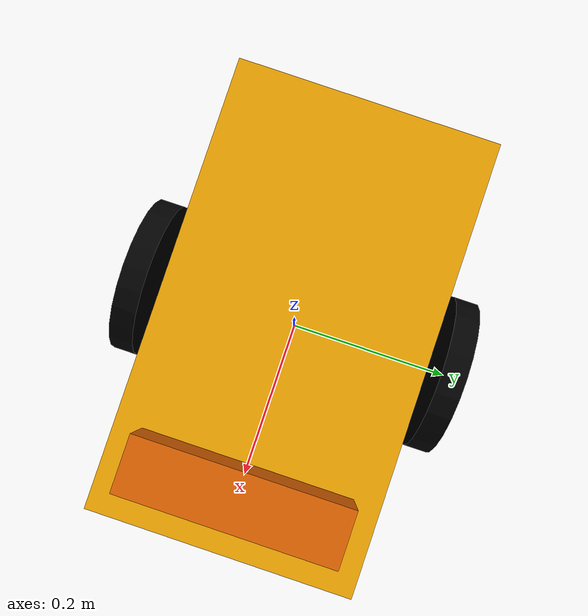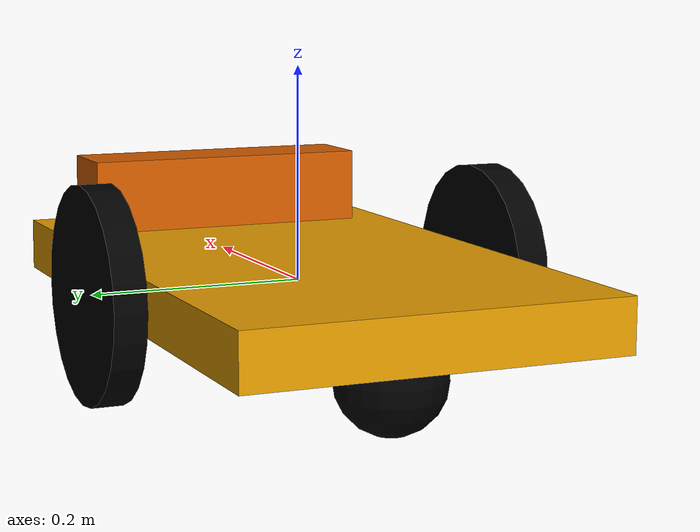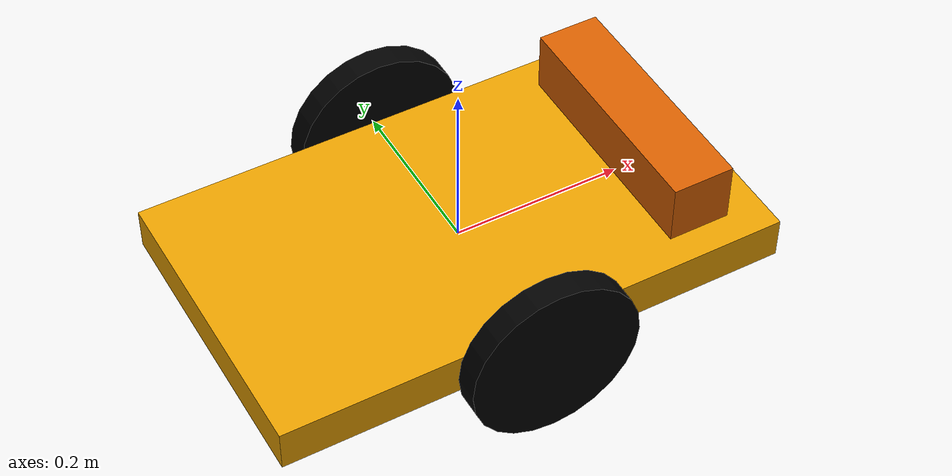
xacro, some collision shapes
<?xml version="1.0"?>

<robot name="robot_base" xmlns:xacro="http://www.ros.org/wiki/xacro">
    <!--______________________________ include ______________________________-->
    <xacro:include filename="$(find robot_navigation)/urdf/robot_essentials.urdf.xacro"/>
    <xacro:include filename="$(find robot_navigation)/urdf/robot_properties.urdf.xacro"/>
    <xacro:include filename="$(find robot_navigation)/urdf/gazebo_essentials.urdf.xacro"/>
    <xacro:include filename="$(find robot_navigation)/urdf/sensors/kinect_base.urdf.xacro"/>

    <!--_____________________________ robot base ____________________________-->
    <link name='base_link'>
        <pose>0.00 0.00 ${robot_base_zsize/2} 0.00 0.00</pose>
        <inertial>
            <mass value="${robot_base_mass}"/>
            <xacro:box_inertia mass="${robot_base_mass}" xlen="${robot_base_xsize}" ylen="${robot_base_ysize}" zlen="${robot_base_zsize}"/>
        </inertial>

        <collision name='collision'>
            <geometry>
                <box size="${robot_base_size}"/>
            </geometry>
        </collision>

        <visual name='chassis_visual'>
            <geometry>
                <box size="${robot_base_size}"/>
            </geometry>
        </visual>

        <xacro:robot_caster_wheel prefix="rear_caster"  origin="${rear_caster_origin}"/>
        <xacro:robot_caster_wheel prefix="front_caster" origin="${front_caster_origin}"/>
    </link>

    <!--____________________________ robot wheels ___________________________-->
    <xacro:robot_wheel prefix="left"/>
    <xacro:robot_wheel prefix="right"/>

    <!--____________________________ robot joints ___________________________-->
    <xacro:wheel_joint prefix="left"  origin="${left_wheel_origin}"/>
    <xacro:wheel_joint prefix="right" origin="${right_wheel_origin}"/>

    <!--___________________________ wheel friction __________________________-->
    <xacro:wheel_properties prefix="left"/>
    <xacro:wheel_properties prefix="right"/>

    <!--___________________________ attach kinect ___________________________-->
    <xacro:sensor_kinect parent="base_link"/>
</robot>

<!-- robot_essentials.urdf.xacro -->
<robot name="robot_essentials" xmlns:xacro="http://www.ros.org/wiki/xacro">
    <!--__________________________ cylinder inertia _________________________-->
    <xacro:macro name="cylinder_inertia" params="mass radius height">
        <inertia
            ixx="${mass * (3 * radius*radius + height*height)/12}" ixy = "0" ixz = "0"
            iyy="${mass * (3 * radius*radius + height*height)/12}" iyz = "0"
            izz="${mass * radius*radius/2}"/>
    </xacro:macro>

    <!--_____________________________ box inertia ___________________________-->
    <xacro:macro name="box_inertia" params="mass xlen ylen zlen">
        <inertia
            ixx="${mass * (ylen*ylen + zlen*zlen)/12}" ixy = "0" ixz = "0"
            iyy="${mass * (xlen*xlen + zlen*zlen)/12}" iyz = "0"
            izz="${mass * (xlen*xlen + zlen*zlen)/12}"/>
    </xacro:macro>

    <!--___________________________ sphere inertia __________________________-->
    <xacro:macro name="sphere_inertia" params="mass radius">
        <inertia
            ixx="${2 * mass * radius*radius/5}" ixy = "0" ixz = "0"
            iyy="${2 * mass * radius*radius/5}" iyz = "0"
            izz="${2 * mass * radius*radius/5}"/>
    </xacro:macro>

    <!--_________________________ caster wheel link _________________________-->
    <xacro:macro name="robot_caster_wheel" params="prefix origin">
        <collision name="${prefix}_caster_collision">
            <origin xyz="${origin}" rpy=" 0.00 0.00 0.00"/>
            <geometry>
                <sphere radius="${robot_caster_diameter/2}"/>
            </geometry>

            <surface>
                <friction>
                    <ode>
                        <mu>0</mu>
                        <mu2>0</mu2>
                        <slip1>1.0</slip1>
                        <slip2>1.0</slip2>
                    </ode>
                </friction>
            </surface>
        </collision>

        <visual name="${prefix}_caster_visual">
            <origin xyz="${origin}" rpy=" 0.00 0.00 0.00"/>
            <geometry>
                <sphere radius="${robot_caster_diameter/2}"/>
            </geometry>
            <material name="">
                <color rgba="0.0 0.0 0.0 1.0"/>
            </material>
        </visual>
    </xacro:macro>
    <!--_____________________________ wheel link ____________________________-->
    <xacro:macro name="robot_wheel" params="prefix">
        <link name="${prefix}_wheel">
            <inertial>
                <mass value="${robot_wheel_mass}"/>
                <xacro:cylinder_inertia mass="${robot_wheel_mass}" radius="${robot_wheel_diameter/2}" height="${robot_wheel_height}"/>
            </inertial>

            <visual>
                <origin xyz="0.00 0.00 0.00" rpy="${M_PI/2} 0.00 0.00"/>

                <geometry>
                    <cylinder radius="${robot_wheel_diameter/2}" length="${robot_wheel_height}"/>
                </geometry>

                <material name="">
                    <color rgba="0.0 0.0 0.0 1.0"/>
                </material>
            </visual>

            <collision>
                <origin xyz="0.00 0.00 0.00" rpy="${M_PI/2} 0.0 0.0"/>

                <geometry>
                    <cylinder radius="${robot_wheel_diameter/2}" length="${robot_wheel_height}"/>
                </geometry>
            </collision>
        </link>
    </xacro:macro>

    <!--_____________________________ wheel joint ___________________________-->
    <xacro:macro name="wheel_joint" params="prefix origin">
        <joint name="${prefix}_wheel_joint" type="continuous">
            <axis xyz="0 1 0"/>
            <parent link="base_link"/>
            <child link="${prefix}_wheel"/>
            <origin xyz="${origin}" rpy="0.00 0.00 0.00"/>
        </joint>
    </xacro:macro>
    <!--_________________________ wheel transmission ________________________-->

</robot>

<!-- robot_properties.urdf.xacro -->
<robot name="robot_properties" xmlns:xacro="http://www.ros.org/wiki/xacro">

    <!--___________________________ math constant ___________________________-->
    <xacro:property name="M_PI"                     value="3.14159265359"/>

    <!--________________________ robot base constants _______________________-->
    <xacro:property name="robot_base_mass"          value="15.0000"/>
    <xacro:property name="robot_base_xsize"         value="0.60000"/>
    <xacro:property name="robot_base_ysize"         value="0.35000"/>
    <xacro:property name="robot_base_zsize"         value="0.05000"/>
    <xacro:property name="robot_base_size"          value="${robot_base_xsize} ${robot_base_ysize} ${robot_base_zsize}"/>

    <!--_______________________ robot wheels constants ______________________-->
    <xacro:property name="robot_wheel_mass"         value="2.50000"/>
    <xacro:property name="robot_wheel_diameter"     value="0.20000"/>
    <xacro:property name="robot_wheel_height"       value="0.03000"/>
    <xacro:property name="robot_wheel_seperation"   value="${robot_base_ysize + robot_wheel_height +0.01}"/>
    <xacro:property name="left_wheel_origin"        value="0.00000  ${robot_wheel_seperation/2} -0.00010"/>
    <xacro:property name="right_wheel_origin"       value="0.00000 -${robot_wheel_seperation/2} -0.00010"/>

    <!--________________________ robot caster wheels ________________________-->
    <xacro:property name="robot_caster_mass"        value="0.50000"/>
    <xacro:property name="robot_caster_diameter"    value="0.10000"/>
    <xacro:property name="rear_caster_origin"       value="-${(robot_base_xsize/2)-0.10} 0.00000 -0.05000"/>
    <xacro:property name="front_caster_origin"      value=" ${(robot_base_xsize/2)-0.10} 0.00000 -0.05000"/>

    <!--__________________________ kinect constants _________________________-->
    <xacro:property name="cam_px"                   value="0.25000"/>
    <xacro:property name="cam_py"                   value="0.00000"/>
	<xacro:property name="cam_pz"                   value="0.07600"/>
	<xacro:property name="cam_or"                   value="0.00000"/>
	<xacro:property name="cam_op"                   value="0.00000"/>
	<xacro:property name="cam_oy"                   value="0.00000"/>

    <!--_______________________ robot wheels constants ______________________-->

</robot>

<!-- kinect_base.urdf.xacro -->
<robot name="sensor_kinect" xmlns:xacro="http://ros.org/wiki/xacro">
    <xacro:include filename="$(find robot_navigation)/urdf/sensors/kinect_gazebo.urdf.xacro"/>
    <xacro:include filename="$(find robot_navigation)/urdf/robot_properties.urdf.xacro"/>

    <!--_______________ Parameters in this part is defined by _______________-->
    <!--_____________ the values in robot_properties.urdf.xacro _____________-->
    <xacro:macro name="sensor_kinect" params="parent">
        <joint name="camera_rgb_joint" type="fixed">
            <origin xyz="${cam_px} ${cam_py} ${cam_pz}" rpy="${cam_or} ${cam_op} ${cam_oy}"/>
            <parent link="${parent}"/>
            <child link="camera_rgb_frame" />
        </joint>
        <link name="camera_rgb_frame"/>

        <joint name="camera_rgb_optical_joint" type="fixed">
            <origin xyz="0 0 0" rpy="${-M_PI/2} 0 ${-M_PI/2}" />
            <parent link="camera_rgb_frame" />
            <child link="camera_rgb_optical_frame" />
        </joint>
        <link name="camera_rgb_optical_frame"/>

        <joint name="camera_joint" type="fixed">
            <origin xyz="-0.031 ${-cam_py} -0.016" rpy="0 0 0"/>
            <parent link="camera_rgb_frame"/>
            <child link="camera_link"/>
        </joint>
        <link name="camera_link">
            <visual>
                <origin xyz="0 0 0" rpy="0 0 ${M_PI/2}"/>
                <geometry>
                    <mesh filename="package://robot_navigation/meshes/sensors/kinect.dae"/>
                </geometry>
            </visual>

            <collision>
                <origin xyz="0.0 0.0 0.0" rpy="0 0 0"/>
                <geometry>
                    <box size="0.07271 0.27794 0.073"/>
                </geometry>
            </collision>

            <inertial>
                <mass value="0.564" />
                <origin xyz="0 0 0" />
                <inertia
                    ixx="0.003881243" ixy="0.0" ixz="0.0"
                    iyy="0.000498940" iyz="0.0"
                    izz="0.003879257" />
            </inertial>
        </link>

        <joint name="camera_depth_joint" type="fixed">
            <origin xyz="0 ${2 * -cam_py} 0" rpy="0 0 0" />
            <parent link="camera_rgb_frame" />
            <child link="camera_depth_frame" />
        </joint>
        <link name="camera_depth_frame"/>

        <joint name="camera_depth_optical_joint" type="fixed">
            <origin xyz="0 0 0" rpy="${-M_PI/2} 0 ${-M_PI/2}" />
            <parent link="camera_depth_frame" />
            <child link="camera_depth_optical_frame" />
        </joint>
        <link name="camera_depth_optical_frame"/>

        <!--__________________ Kinect sensor for simulation _________________-->
        <xacro:simulate_depthSensor/>
    </xacro:macro>
</robot>
